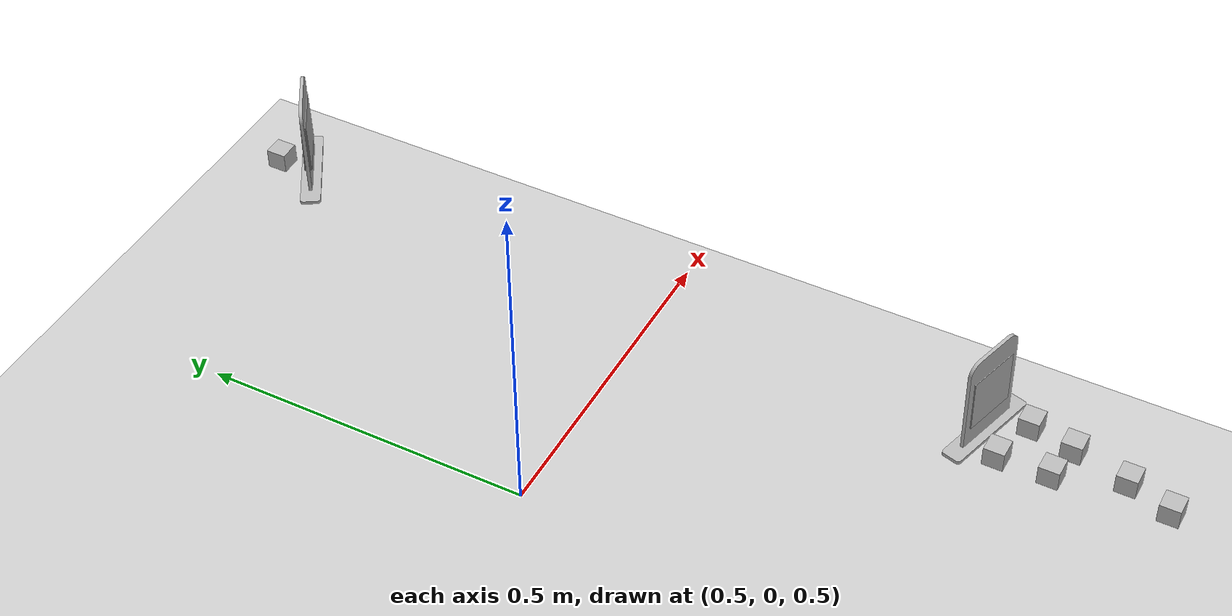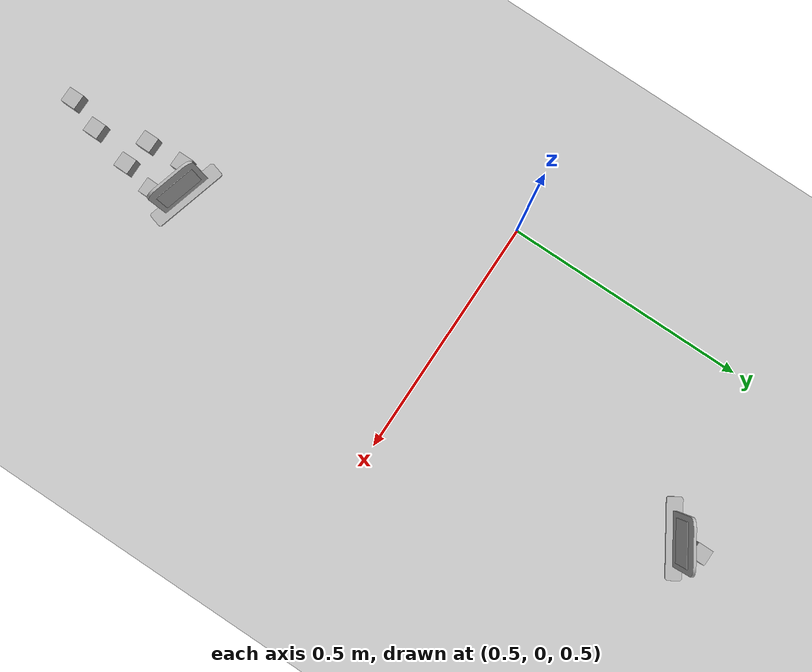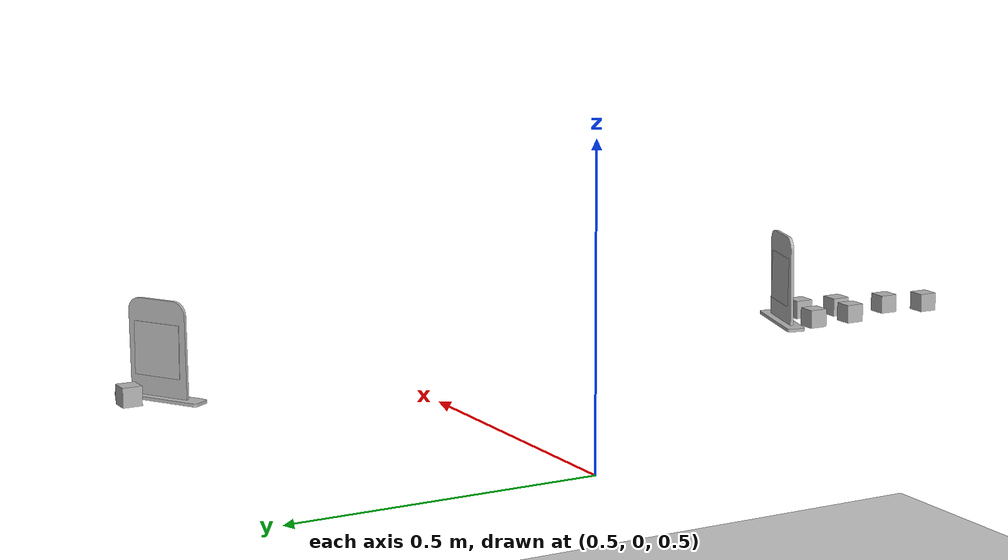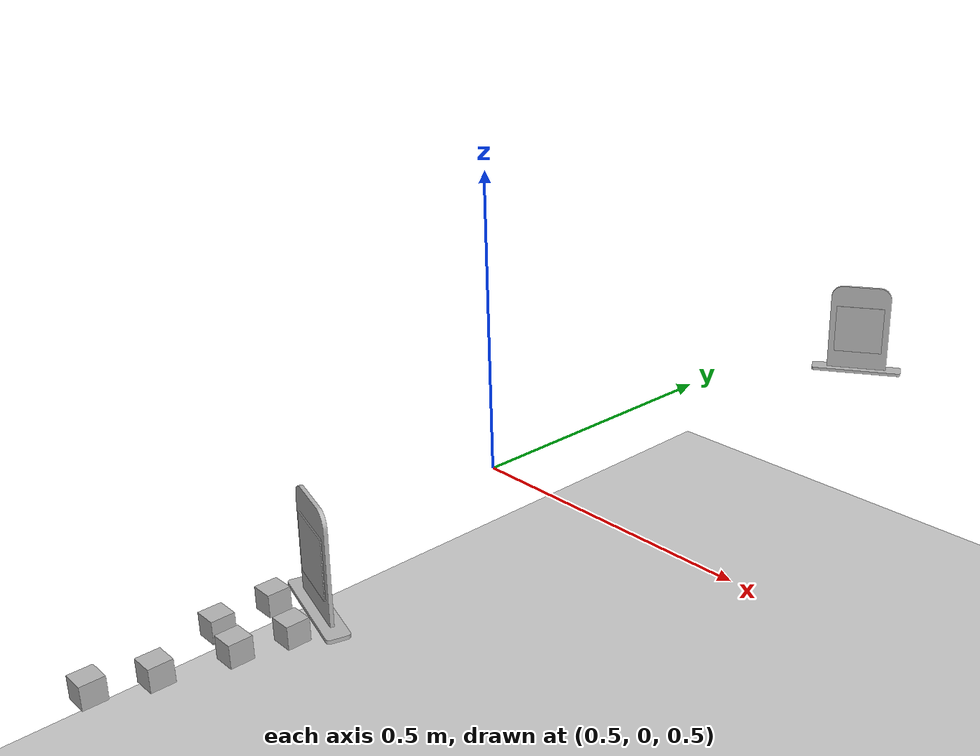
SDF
<sdf version="1.7">
 <world name="default">
  <model name="ground_plane">
   <static>1</static>
   <link name="link">
    <collision name="collision">
     <geometry><plane><normal>0 0 1</normal><size>100 100</size></plane></geometry>
     <surface><friction><ode><mu>100</mu><mu2>50</mu2></ode></friction></surface>
    </collision>
    <visual name="visual">
     <cast_shadows>0</cast_shadows>
     <geometry><plane><normal>0 0 1</normal><size>100 100</size></plane></geometry>
     <material>
      <script><uri>file://media/materials/scripts/gazebo.material</uri><name>Gazebo/Grey</name></script>
     </material>
    </visual>
   </link>
  </model>
  <model name="pancarte_qr_code_zone3Arkadia">
   <pose>0.832866 0.544566 0.649378 0 -0 0.551332</pose>
   <model name="pancarte">
    <static>1</static>
    <link name="link">
     <collision name="collision">
      <pose>0 0.075 0 0 -0 0</pose>
      <geometry><box><size>0.15 0.15 0.03</size></box></geometry>
     </collision>
     <visual name="visual">
      <geometry>
       <mesh><scale>0.001 0.001 0.001</scale><uri>model://pancarte/meshes/PANCARTE_QR.stl</uri></mesh>
      </geometry>
     </visual>
    </link>
    <pose>8.8e-05 0.001115 -0.037644 1.55978 -0 0</pose>
   </model>
   <model name="qr_code_zone3Arkadia">
    <static>1</static>
    <link name="qr_code_zone3Arkadia_link">
     <pose>0 0 0.001 0 -0 1.5708</pose>
     <visual name="visual_qr_code_zone3Arkadia">
      <cast_shadows>0</cast_shadows>
      <geometry><box><size>0.08 0.08 0.001</size></box></geometry>
      <material>
       <script>
        <uri>model://qr_code_zone3Arkadia/materials/scripts</uri>
        <uri>model://qr_code_zone3Arkadia/materials/textures</uri>
        <name>qr_code_zone3Arkadia/qr_code_zone3Arkadia</name>
       </script>
      </material>
     </visual>
    </link>
    <pose>-8.8e-05 -0.001115 0.037644 1.55615 -0 0</pose>
   </model>
   <model name="qr_code_zone3Arkadia_0">
    <static>1</static>
    <link name="qr_code_zone3Arkadia_link">
     <pose>0 0 0.001 0 -0 1.5708</pose>
     <visual name="visual_qr_code_zone3Arkadia">
      <cast_shadows>0</cast_shadows>
      <geometry><box><size>0.08 0.08 0.001</size></box></geometry>
      <material>
       <script>
        <uri>model://qr_code_zone3Arkadia/materials/scripts</uri>
        <uri>model://qr_code_zone3Arkadia/materials/textures</uri>
        <name>qr_code_zone3Arkadia/qr_code_zone3Arkadia</name>
       </script>
      </material>
     </visual>
    </link>
    <pose>-8.8e-05 0.0072 0.037644 -1.58544 0.001593 3.14159</pose>
   </model>
   <static>0</static>
  </model>
  <model name="pancarte_qr_code_zone3MoroccoMall">
   <pose>0.803787 -0.542021 0.649378 0 0 -0.276767</pose>
   <model name="pancarte">
    <static>1</static>
    <link name="link">
     <collision name="collision">
      <pose>0 0.075 0 0 -0 0</pose>
      <geometry><box><size>0.15 0.15 0.03</size></box></geometry>
     </collision>
     <visual name="visual">
      <geometry>
       <mesh><scale>0.001 0.001 0.001</scale><uri>model://pancarte/meshes/PANCARTE_QR.stl</uri></mesh>
      </geometry>
     </visual>
    </link>
    <pose>8.8e-05 0.001115 -0.037644 1.55978 -0 0</pose>
   </model>
   <model name="qr_code_zone3MoroccoMall">
    <static>1</static>
    <link name="qr_code_zone3MoroccoMall_link">
     <pose>0 0 0.001 0 -0 1.5708</pose>
     <visual name="visual_qr_code_zone3MoroccoMall">
      <cast_shadows>0</cast_shadows>
      <geometry><box><size>0.08 0.08 0.001</size></box></geometry>
      <material>
       <script>
        <uri>model://qr_code_zone3MoroccoMall/materials/scripts</uri>
        <uri>model://qr_code_zone3MoroccoMall/materials/textures</uri>
        <name>qr_code_zone3MoroccoMall/qr_code_zone3MoroccoMall</name>
       </script>
      </material>
     </visual>
    </link>
    <pose>-8.8e-05 -0.001115 0.037644 1.55615 -0 0</pose>
   </model>
   <model name="qr_code_zone3MoroccoMall_0">
    <static>1</static>
    <link name="qr_code_zone3MoroccoMall_link">
     <pose>0 0 0.001 0 -0 1.5708</pose>
     <visual name="visual_qr_code_zone3MoroccoMall">
      <cast_shadows>0</cast_shadows>
      <geometry><box><size>0.08 0.08 0.001</size></box></geometry>
      <material>
       <script>
        <uri>model://qr_code_zone3MoroccoMall/materials/scripts</uri>
        <uri>model://qr_code_zone3MoroccoMall/materials/textures</uri>
        <name>qr_code_zone3MoroccoMall/qr_code_zone3MoroccoMall</name>
       </script>
      </material>
     </visual>
    </link>
    <pose>-8.8e-05 0.0072 0.037644 -1.58544 0.001593 3.14159</pose>
   </model>
   <static>0</static>
  </model>
  <model name="dangereux_industrielle_mercure_industriel">
   <static>0</static>
   <link name="link">
    <inertial>
     <mass>0.00893</mass>
     <inertia>
      <ixx>4.47e-06</ixx>
      <iyy>4.47e-06</iyy>
      <izz>4.47e-06</izz>
      <ixy>0</ixy>
      <ixz>0</ixz>
      <iyz>0</iyz>
     </inertia>
    </inertial>
    <visual name="cube_visual">
     <geometry><box><size>0.03 0.03 0.03</size></box></geometry>
     <material>
      <script>
       <uri>model://dangereux_industrielle_mercure_industriel/materials/scripts/</uri>
       <uri>model://dangereux_industrielle_mercure_industriel/materials/textures/</uri>
       <name>dangereux_industrielle_mercure_industriel/FaceMaterial</name>
      </script>
     </material>
    </visual>
    <collision name="collision"><geometry><box><size>0.03 0.03 0.03</size></box></geometry></collision>
   </link>
   <pose>0.828888 0.595279 0.624996 4.8e-05 1e-06 -0.000195</pose>
  </model>
  <model name="menagers_industrielle_rouleau_carton">
   <static>0</static>
   <link name="link">
    <inertial>
     <mass>0.00893</mass>
     <inertia>
      <ixx>4.47e-06</ixx>
      <iyy>4.47e-06</iyy>
      <izz>4.47e-06</izz>
      <ixy>0</ixy>
      <ixz>0</ixz>
      <iyz>0</iyz>
     </inertia>
    </inertial>
    <visual name="cube_visual">
     <geometry><box><size>0.03 0.03 0.03</size></box></geometry>
     <material>
      <script>
       <uri>model://menagers_industrielle_rouleau_carton/materials/scripts/</uri>
       <uri>model://menagers_industrielle_rouleau_carton/materials/textures/</uri>
       <name>menagers_industrielle_rouleau_carton/FaceMaterial</name>
      </script>
     </material>
    </visual>
    <collision name="collision"><geometry><box><size>0.03 0.03 0.03</size></box></geometry></collision>
   </link>
   <pose>0.763213 -0.64984 0.625 0 -0 -0.00724</pose>
  </model>
  <model name="menagers_residentielle_emballage_biscuit">
   <static>0</static>
   <link name="link">
    <inertial>
     <mass>0.00893</mass>
     <inertia>
      <ixx>4.47e-06</ixx>
      <iyy>4.47e-06</iyy>
      <izz>4.47e-06</izz>
      <ixy>0</ixy>
      <ixz>0</ixz>
      <iyz>0</iyz>
     </inertia>
    </inertial>
    <visual name="cube_visual">
     <geometry><box><size>0.03 0.03 0.03</size></box></geometry>
     <material>
      <script>
       <uri>model://menagers_residentielle_emballage_biscuit/materials/scripts/</uri>
       <uri>model://menagers_residentielle_emballage_biscuit/materials/textures/</uri>
       <name>menagers_residentielle_emballage_biscuit/FaceMaterial</name>
      </script>
     </material>
    </visual>
    <collision name="collision"><geometry><box><size>0.03 0.03 0.03</size></box></geometry></collision>
   </link>
   <pose>0.761197 -0.574404 0.625 0 -0 -0.007725</pose>
  </model>
  <model name="recyclables_commerciale_verre_restaurant">
   <static>0</static>
   <link name="link">
    <inertial>
     <mass>0.00893</mass>
     <inertia>
      <ixx>4.47e-06</ixx>
      <iyy>4.47e-06</iyy>
      <izz>4.47e-06</izz>
      <ixy>0</ixy>
      <ixz>0</ixz>
      <iyz>0</iyz>
     </inertia>
    </inertial>
    <visual name="cube_visual">
     <geometry><box><size>0.03 0.03 0.03</size></box></geometry>
     <material>
      <script>
       <uri>model://recyclables_commerciale_verre_restaurant/materials/scripts/</uri>
       <uri>model://recyclables_commerciale_verre_restaurant/materials/textures/</uri>
       <name>recyclables_commerciale_verre_restaurant/FaceMaterial</name>
      </script>
     </material>
    </visual>
    <collision name="collision"><geometry><box><size>0.03 0.03 0.03</size></box></geometry></collision>
   </link>
   <pose>0.818323 -0.660721 0.624996 0 7.6e-05 -0.001942</pose>
  </model>
  <model name="recyclables_industrielle_carton_ondule_industriel_0">
   <static>0</static>
   <link name="link">
    <inertial>
     <mass>0.00893</mass>
     <inertia>
      <ixx>4.47e-06</ixx>
      <iyy>4.47e-06</iyy>
      <izz>4.47e-06</izz>
      <ixy>0</ixy>
      <ixz>0</ixz>
      <iyz>0</iyz>
     </inertia>
    </inertial>
    <visual name="cube_visual">
     <geometry><box><size>0.03 0.03 0.03</size></box></geometry>
     <material>
      <script>
       <uri>model://recyclables_industrielle_carton_ondule_industriel/materials/scripts/</uri>
       <uri>model://recyclables_industrielle_carton_ondule_industriel/materials/textures/</uri>
       <name>recyclables_industrielle_carton_ondule_industriel/FaceMaterial</name>
      </script>
     </material>
    </visual>
    <collision name="collision"><geometry><box><size>0.03 0.03 0.03</size></box></geometry></collision>
   </link>
   <pose>0.796107 -0.744351 0.624997 0.000123 -1e-06 -0.007151</pose>
  </model>
  <model name="dangereux_commerciale_liquide_refroidissement">
   <static>0</static>
   <link name="link">
    <inertial>
     <mass>0.00893</mass>
     <inertia>
      <ixx>4.47e-06</ixx>
      <iyy>4.47e-06</iyy>
      <izz>4.47e-06</izz>
      <ixy>0</ixy>
      <ixz>0</ixz>
      <iyz>0</iyz>
     </inertia>
    </inertial>
    <visual name="cube_visual">
     <geometry><box><size>0.03 0.03 0.03</size></box></geometry>
     <material>
      <script>
       <uri>model://dangereux_commerciale_liquide_refroidissement/materials/scripts/</uri>
       <uri>model://dangereux_commerciale_liquide_refroidissement/materials/textures/</uri>
       <name>dangereux_commerciale_liquide_refroidissement/FaceMaterial</name>
      </script>
     </material>
    </visual>
    <collision name="collision"><geometry><box><size>0.03 0.03 0.03</size></box></geometry></collision>
   </link>
   <pose>0.773248 -0.809927 0.624994 -8.6e-05 -1e-06 -0.007411</pose>
  </model>
  <model name="dangereux_residentielle_pile_bouton">
   <static>0</static>
   <link name="link">
    <inertial>
     <mass>0.00893</mass>
     <inertia>
      <ixx>4.47e-06</ixx>
      <iyy>4.47e-06</iyy>
      <izz>4.47e-06</izz>
      <ixy>0</ixy>
      <ixz>0</ixz>
      <iyz>0</iyz>
     </inertia>
    </inertial>
    <visual name="cube_visual">
     <geometry><box><size>0.03 0.03 0.03</size></box></geometry>
     <material>
      <script>
       <uri>model://dangereux_residentielle_pile_bouton/materials/scripts/</uri>
       <uri>model://dangereux_residentielle_pile_bouton/materials/textures/</uri>
       <name>dangereux_residentielle_pile_bouton/FaceMaterial</name>
      </script>
     </material>
    </visual>
    <collision name="collision"><geometry><box><size>0.03 0.03 0.03</size></box></geometry></collision>
   </link>
   <pose>0.832816 -0.595719 0.624993 -0.000125 2e-06 -0.008386</pose>
  </model>
 </world>
</sdf>
